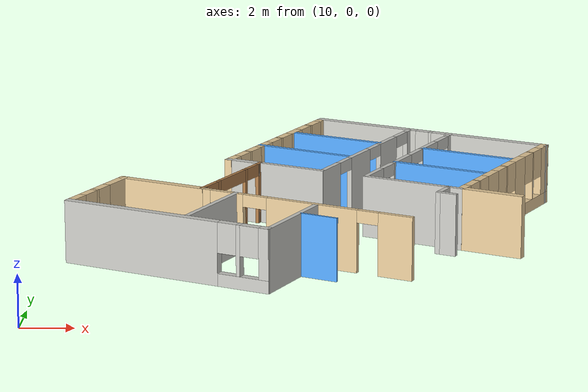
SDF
<sdf version="1.6">
 <model name="floor_with_ground">
  <pose>1.8499 0.23643 0 0 -0 0</pose>
  <link name="Wall_102">
   <pose>9.8976 9.88157 0 0 -0 1.11772</pose>
   <visual name="Wall_102_Visual_0">
    <pose>-1.5828 0 1.25 0 -0 0</pose>
    <geometry><box><size>1.04544 0.32 2.5</size></box></geometry>
    <material>
     <script><uri>file://media/materials/scripts/gazebo.material</uri><name>Gazebo/Grey</name></script>
     <ambient>0.921569 0.807843 0.615686 1</ambient>
    </material>
   </visual>
   <collision name="Wall_102_Collision_0">
    <geometry><box><size>1.04544 0.32 2.5</size></box></geometry>
    <pose>-1.5828 0 1.25 0 -0 0</pose>
   </collision>
   <visual name="Wall_102_Visual_1">
    <pose>0.522722 0 0.25 0 -0 0</pose>
    <geometry><box><size>3.1656 0.32 0.5</size></box></geometry>
    <material>
     <script><uri>file://media/materials/scripts/gazebo.material</uri><name>Gazebo/Grey</name></script>
     <ambient>0.921569 0.807843 0.615686 1</ambient>
    </material>
   </visual>
   <collision name="Wall_102_Collision_1">
    <geometry><box><size>3.1656 0.32 0.5</size></box></geometry>
    <pose>0.522722 0 0.25 0 -0 0</pose>
   </collision>
   <visual name="Wall_102_Visual_2">
    <pose>-0.17882 0 1.5 0 -0 0</pose>
    <geometry><box><size>0.162513 0.32 2</size></box></geometry>
    <material>
     <script><uri>file://media/materials/scripts/gazebo.material</uri><name>Gazebo/Grey</name></script>
     <ambient>0.921569 0.807843 0.615686 1</ambient>
    </material>
   </visual>
   <collision name="Wall_102_Collision_2">
    <geometry><box><size>0.162513 0.32 2</size></box></geometry>
    <pose>-0.17882 0 1.5 0 -0 0</pose>
   </collision>
   <visual name="Wall_102_Visual_3">
    <pose>1.40398 0 1.5 0 -0 0</pose>
    <geometry><box><size>1.40308 0.32 2</size></box></geometry>
    <material>
     <script><uri>file://media/materials/scripts/gazebo.material</uri><name>Gazebo/Grey</name></script>
     <ambient>0.921569 0.807843 0.615686 1</ambient>
    </material>
   </visual>
   <collision name="Wall_102_Collision_3">
    <geometry><box><size>1.40308 0.32 2</size></box></geometry>
    <pose>1.40398 0 1.5 0 -0 0</pose>
   </collision>
   <visual name="Wall_102_Visual_4">
    <pose>-0.660077 0 1.9 0 -0 0</pose>
    <geometry><box><size>0.8 0.32 1.2</size></box></geometry>
    <material>
     <script><uri>file://media/materials/scripts/gazebo.material</uri><name>Gazebo/Grey</name></script>
     <ambient>0.921569 0.807843 0.615686 1</ambient>
    </material>
   </visual>
   <collision name="Wall_102_Collision_4">
    <geometry><box><size>0.8 0.32 1.2</size></box></geometry>
    <pose>-0.660077 0 1.9 0 -0 0</pose>
   </collision>
   <visual name="Wall_102_Visual_5">
    <pose>0.302436 0 1.9 0 -0 0</pose>
    <geometry><box><size>0.8 0.32 1.2</size></box></geometry>
    <material>
     <script><uri>file://media/materials/scripts/gazebo.material</uri><name>Gazebo/Grey</name></script>
     <ambient>0.921569 0.807843 0.615686 1</ambient>
    </material>
   </visual>
   <collision name="Wall_102_Collision_5">
    <geometry><box><size>0.8 0.32 1.2</size></box></geometry>
    <pose>0.302436 0 1.9 0 -0 0</pose>
   </collision>
  </link>
  <link name="Wall_105">
   <pose>15.0533 12.1406 0 0 -0 1.10283</pose>
   <visual name="Wall_105_Visual_0">
    <pose>-2.25013 0 1.25 0 -0 0</pose>
    <geometry><box><size>0.370072 0.15 2.5</size></box></geometry>
    <material>
     <script><uri>file://media/materials/scripts/gazebo.material</uri><name>Gazebo/Wood</name></script>
     <ambient>1 1 1 1</ambient>
    </material>
   </visual>
   <collision name="Wall_105_Collision_0">
    <geometry><box><size>0.370072 0.15 2.5</size></box></geometry>
    <pose>-2.25013 0 1.25 0 -0 0</pose>
   </collision>
   <visual name="Wall_105_Visual_1">
    <pose>-1.06463 0 1.25 0 -0 0</pose>
    <geometry><box><size>0.200912 0.15 2.5</size></box></geometry>
    <material>
     <script><uri>file://media/materials/scripts/gazebo.material</uri><name>Gazebo/Wood</name></script>
     <ambient>1 1 1 1</ambient>
    </material>
   </visual>
   <collision name="Wall_105_Collision_1">
    <geometry><box><size>0.200912 0.15 2.5</size></box></geometry>
    <pose>-1.06463 0 1.25 0 -0 0</pose>
   </collision>
   <visual name="Wall_105_Visual_2">
    <pose>1.08319 0 1.25 0 -0 0</pose>
    <geometry><box><size>0.159861 0.15 2.5</size></box></geometry>
    <material>
     <script><uri>file://media/materials/scripts/gazebo.material</uri><name>Gazebo/Wood</name></script>
     <ambient>1 1 1 1</ambient>
    </material>
   </visual>
   <collision name="Wall_105_Collision_2">
    <geometry><box><size>0.159861 0.15 2.5</size></box></geometry>
    <pose>1.08319 0 1.25 0 -0 0</pose>
   </collision>
   <visual name="Wall_105_Visual_3">
    <pose>2.24914 0 1.25 0 -0 0</pose>
    <geometry><box><size>0.372048 0.15 2.5</size></box></geometry>
    <material>
     <script><uri>file://media/materials/scripts/gazebo.material</uri><name>Gazebo/Wood</name></script>
     <ambient>1 1 1 1</ambient>
    </material>
   </visual>
   <collision name="Wall_105_Collision_3">
    <geometry><box><size>0.372048 0.15 2.5</size></box></geometry>
    <pose>2.24914 0 1.25 0 -0 0</pose>
   </collision>
   <visual name="Wall_105_Visual_4">
    <pose>-1.61509 0 2.25 0 -0 0</pose>
    <geometry><box><size>0.9 0.15 0.5</size></box></geometry>
    <material>
     <script><uri>file://media/materials/scripts/gazebo.material</uri><name>Gazebo/Wood</name></script>
     <ambient>1 1 1 1</ambient>
    </material>
   </visual>
   <collision name="Wall_105_Collision_4">
    <geometry><box><size>0.9 0.15 0.5</size></box></geometry>
    <pose>-1.61509 0 2.25 0 -0 0</pose>
   </collision>
   <visual name="Wall_105_Visual_5">
    <pose>0.019538 0 2.25 0 -0 0</pose>
    <geometry><box><size>1.96743 0.15 0.5</size></box></geometry>
    <material>
     <script><uri>file://media/materials/scripts/gazebo.material</uri><name>Gazebo/Wood</name></script>
     <ambient>1 1 1 1</ambient>
    </material>
   </visual>
   <collision name="Wall_105_Collision_5">
    <geometry><box><size>1.96743 0.15 0.5</size></box></geometry>
    <pose>0.019538 0 2.25 0 -0 0</pose>
   </collision>
   <visual name="Wall_105_Visual_6">
    <pose>1.61312 0 2.25 0 -0 0</pose>
    <geometry><box><size>0.9 0.15 0.5</size></box></geometry>
    <material>
     <script><uri>file://media/materials/scripts/gazebo.material</uri><name>Gazebo/Wood</name></script>
     <ambient>1 1 1 1</ambient>
    </material>
   </visual>
   <collision name="Wall_105_Collision_6">
    <geometry><box><size>0.9 0.15 0.5</size></box></geometry>
    <pose>1.61312 0 2.25 0 -0 0</pose>
   </collision>
  </link>
  <link name="Wall_113">
   <collision name="Wall_113_Collision">
    <geometry><box><size>0.880212 0.2 2.5</size></box></geometry>
    <pose>0 0 1.25 0 -0 0</pose>
   </collision>
   <visual name="Wall_113_Visual">
    <pose>0 0 1.25 0 -0 0</pose>
    <geometry><box><size>0.880212 0.2 2.5</size></box></geometry>
    <material>
     <script><uri>file://media/materials/scripts/gazebo.material</uri><name>Gazebo/CeilingTiled</name></script>
     <ambient>0.921569 0.807843 0.615686 1</ambient>
    </material>
   </visual>
   <pose>23.5971 9.55907 0 0 -0 2.67663</pose>
  </link>
  <link name="Wall_114">
   <collision name="Wall_114_Collision">
    <geometry><box><size>1.09128 0.2 2.5</size></box></geometry>
    <pose>0 0 1.25 0 -0 0</pose>
   </collision>
   <visual name="Wall_114_Visual">
    <pose>0 0 1.25 0 -0 0</pose>
    <geometry><box><size>1.09128 0.2 2.5</size></box></geometry>
    <material>
     <script><uri>file://media/materials/scripts/gazebo.material</uri><name>Gazebo/CeilingTiled</name></script>
     <ambient>0.921569 0.807843 0.615686 1</ambient>
    </material>
   </visual>
   <pose>23.4921 10.1101 0 0 -0 1.10765</pose>
  </link>
  <link name="Wall_118">
   <pose>16.6583 18.4651 0 0 -0 1.11268</pose>
   <visual name="Wall_118_Visual_0">
    <pose>-3.85566 0 1.25 0 -0 0</pose>
    <geometry><box><size>0.842754 0.32 2.5</size></box></geometry>
    <material>
     <script><uri>file://media/materials/scripts/gazebo.material</uri><name>Gazebo/Grey</name></script>
     <ambient>0.921569 0.807843 0.615686 1</ambient>
    </material>
   </visual>
   <collision name="Wall_118_Collision_0">
    <geometry><box><size>0.842754 0.32 2.5</size></box></geometry>
    <pose>-3.85566 0 1.25 0 -0 0</pose>
   </collision>
   <visual name="Wall_118_Visual_1">
    <pose>0.421377 0 0.25 0 -0 0</pose>
    <geometry><box><size>7.71131 0.32 0.5</size></box></geometry>
    <material>
     <script><uri>file://media/materials/scripts/gazebo.material</uri><name>Gazebo/Grey</name></script>
     <ambient>0.921569 0.807843 0.615686 1</ambient>
    </material>
   </visual>
   <collision name="Wall_118_Collision_1">
    <geometry><box><size>7.71131 0.32 0.5</size></box></geometry>
    <pose>0.421377 0 0.25 0 -0 0</pose>
   </collision>
   <visual name="Wall_118_Visual_2">
    <pose>-2.57807 0 1.5 0 -0 0</pose>
    <geometry><box><size>0.112411 0.32 2</size></box></geometry>
    <material>
     <script><uri>file://media/materials/scripts/gazebo.material</uri><name>Gazebo/Grey</name></script>
     <ambient>0.921569 0.807843 0.615686 1</ambient>
    </material>
   </visual>
   <collision name="Wall_118_Collision_2">
    <geometry><box><size>0.112411 0.32 2</size></box></geometry>
    <pose>-2.57807 0 1.5 0 -0 0</pose>
   </collision>
   <visual name="Wall_118_Visual_3">
    <pose>-1.21741 0 1.5 0 -0 0</pose>
    <geometry><box><size>1.00892 0.32 2</size></box></geometry>
    <material>
     <script><uri>file://media/materials/scripts/gazebo.material</uri><name>Gazebo/Grey</name></script>
     <ambient>0.921569 0.807843 0.615686 1</ambient>
    </material>
   </visual>
   <collision name="Wall_118_Collision_3">
    <geometry><box><size>1.00892 0.32 2</size></box></geometry>
    <pose>-1.21741 0 1.5 0 -0 0</pose>
   </collision>
   <visual name="Wall_118_Visual_4">
    <pose>0.148764 0 1.5 0 -0 0</pose>
    <geometry><box><size>0.123417 0.32 2</size></box></geometry>
    <material>
     <script><uri>file://media/materials/scripts/gazebo.material</uri><name>Gazebo/Grey</name></script>
     <ambient>0.921569 0.807843 0.615686 1</ambient>
    </material>
   </visual>
   <collision name="Wall_118_Collision_4">
    <geometry><box><size>0.123417 0.32 2</size></box></geometry>
    <pose>0.148764 0 1.5 0 -0 0</pose>
   </collision>
   <visual name="Wall_118_Visual_5">
    <pose>1.46776 0 1.5 0 -0 0</pose>
    <geometry><box><size>0.914569 0.32 2</size></box></geometry>
    <material>
     <script><uri>file://media/materials/scripts/gazebo.material</uri><name>Gazebo/Grey</name></script>
     <ambient>0.921569 0.807843 0.615686 1</ambient>
    </material>
   </visual>
   <collision name="Wall_118_Collision_5">
    <geometry><box><size>0.914569 0.32 2</size></box></geometry>
    <pose>1.46776 0 1.5 0 -0 0</pose>
   </collision>
   <visual name="Wall_118_Visual_6">
    <pose>2.7876 0 1.5 0 -0 0</pose>
    <geometry><box><size>0.12511 0.32 2</size></box></geometry>
    <material>
     <script><uri>file://media/materials/scripts/gazebo.material</uri><name>Gazebo/Grey</name></script>
     <ambient>0.921569 0.807843 0.615686 1</ambient>
    </material>
   </visual>
   <collision name="Wall_118_Collision_6">
    <geometry><box><size>0.12511 0.32 2</size></box></geometry>
    <pose>2.7876 0 1.5 0 -0 0</pose>
   </collision>
   <visual name="Wall_118_Visual_7">
    <pose>3.96359 0 1.5 0 -0 0</pose>
    <geometry><box><size>0.626882 0.32 2</size></box></geometry>
    <material>
     <script><uri>file://media/materials/scripts/gazebo.material</uri><name>Gazebo/Grey</name></script>
     <ambient>0.921569 0.807843 0.615686 1</ambient>
    </material>
   </visual>
   <collision name="Wall_118_Collision_7">
    <geometry><box><size>0.626882 0.32 2</size></box></geometry>
    <pose>3.96359 0 1.5 0 -0 0</pose>
   </collision>
   <visual name="Wall_118_Visual_8">
    <pose>-3.03428 0 1.9 0 -0 0</pose>
    <geometry><box><size>0.8 0.32 1.2</size></box></geometry>
    <material>
     <script><uri>file://media/materials/scripts/gazebo.material</uri><name>Gazebo/Grey</name></script>
     <ambient>0.921569 0.807843 0.615686 1</ambient>
    </material>
   </visual>
   <collision name="Wall_118_Collision_8">
    <geometry><box><size>0.8 0.32 1.2</size></box></geometry>
    <pose>-3.03428 0 1.9 0 -0 0</pose>
   </collision>
   <visual name="Wall_118_Visual_9">
    <pose>-2.12187 0 1.9 0 -0 0</pose>
    <geometry><box><size>0.8 0.32 1.2</size></box></geometry>
    <material>
     <script><uri>file://media/materials/scripts/gazebo.material</uri><name>Gazebo/Grey</name></script>
     <ambient>0.921569 0.807843 0.615686 1</ambient>
    </material>
   </visual>
   <collision name="Wall_118_Collision_9">
    <geometry><box><size>0.8 0.32 1.2</size></box></geometry>
    <pose>-2.12187 0 1.9 0 -0 0</pose>
   </collision>
   <visual name="Wall_118_Visual_10">
    <pose>-0.312945 0 1.9 0 -0 0</pose>
    <geometry><box><size>0.8 0.32 1.2</size></box></geometry>
    <material>
     <script><uri>file://media/materials/scripts/gazebo.material</uri><name>Gazebo/Grey</name></script>
     <ambient>0.921569 0.807843 0.615686 1</ambient>
    </material>
   </visual>
   <collision name="Wall_118_Collision_10">
    <geometry><box><size>0.8 0.32 1.2</size></box></geometry>
    <pose>-0.312945 0 1.9 0 -0 0</pose>
   </collision>
   <visual name="Wall_118_Visual_11">
    <pose>0.610473 0 1.9 0 -0 0</pose>
    <geometry><box><size>0.8 0.32 1.2</size></box></geometry>
    <material>
     <script><uri>file://media/materials/scripts/gazebo.material</uri><name>Gazebo/Grey</name></script>
     <ambient>0.921569 0.807843 0.615686 1</ambient>
    </material>
   </visual>
   <collision name="Wall_118_Collision_11">
    <geometry><box><size>0.8 0.32 1.2</size></box></geometry>
    <pose>0.610473 0 1.9 0 -0 0</pose>
   </collision>
   <visual name="Wall_118_Visual_12">
    <pose>2.32504 0 1.9 0 -0 0</pose>
    <geometry><box><size>0.8 0.32 1.2</size></box></geometry>
    <material>
     <script><uri>file://media/materials/scripts/gazebo.material</uri><name>Gazebo/Grey</name></script>
     <ambient>0.921569 0.807843 0.615686 1</ambient>
    </material>
   </visual>
   <collision name="Wall_118_Collision_12">
    <geometry><box><size>0.8 0.32 1.2</size></box></geometry>
    <pose>2.32504 0 1.9 0 -0 0</pose>
   </collision>
   <visual name="Wall_118_Visual_13">
    <pose>3.25015 0 1.9 0 -0 0</pose>
    <geometry><box><size>0.8 0.32 1.2</size></box></geometry>
    <material>
     <script><uri>file://media/materials/scripts/gazebo.material</uri><name>Gazebo/Grey</name></script>
     <ambient>0.921569 0.807843 0.615686 1</ambient>
    </material>
   </visual>
   <collision name="Wall_118_Collision_13">
    <geometry><box><size>0.8 0.32 1.2</size></box></geometry>
    <pose>3.25015 0 1.9 0 -0 0</pose>
   </collision>
  </link>
  <link name="Wall_119">
   <pose>23.1751 19.8661 0 0 0 -0.453976</pose>
   <visual name="Wall_119_Visual_0">
    <pose>-3.01092 0 1.25 0 -0 0</pose>
    <geometry><box><size>4.74899 0.32 2.5</size></box></geometry>
    <material>
     <script><uri>file://media/materials/scripts/gazebo.material</uri><name>Gazebo/CeilingTiled</name></script>
     <ambient>0.921569 0.807843 0.615686 1</ambient>
    </material>
   </visual>
   <collision name="Wall_119_Collision_0">
    <geometry><box><size>4.74899 0.32 2.5</size></box></geometry>
    <pose>-3.01092 0 1.25 0 -0 0</pose>
   </collision>
   <visual name="Wall_119_Visual_1">
    <pose>2.3745 0 0.25 0 -0 0</pose>
    <geometry><box><size>6.02183 0.32 0.5</size></box></geometry>
    <material>
     <script><uri>file://media/materials/scripts/gazebo.material</uri><name>Gazebo/CeilingTiled</name></script>
     <ambient>0.921569 0.807843 0.615686 1</ambient>
    </material>
   </visual>
   <collision name="Wall_119_Collision_1">
    <geometry><box><size>6.02183 0.32 0.5</size></box></geometry>
    <pose>2.3745 0 0.25 0 -0 0</pose>
   </collision>
   <visual name="Wall_119_Visual_2">
    <pose>0.029674 0 1.5 0 -0 0</pose>
    <geometry><box><size>0.132185 0.32 2</size></box></geometry>
    <material>
     <script><uri>file://media/materials/scripts/gazebo.material</uri><name>Gazebo/CeilingTiled</name></script>
     <ambient>0.921569 0.807843 0.615686 1</ambient>
    </material>
   </visual>
   <collision name="Wall_119_Collision_2">
    <geometry><box><size>0.132185 0.32 2</size></box></geometry>
    <pose>0.029674 0 1.5 0 -0 0</pose>
   </collision>
   <visual name="Wall_119_Visual_3">
    <pose>3.04059 0 1.5 0 -0 0</pose>
    <geometry><box><size>4.68965 0.32 2</size></box></geometry>
    <material>
     <script><uri>file://media/materials/scripts/gazebo.material</uri><name>Gazebo/CeilingTiled</name></script>
     <ambient>0.921569 0.807843 0.615686 1</ambient>
    </material>
   </visual>
   <collision name="Wall_119_Collision_3">
    <geometry><box><size>4.68965 0.32 2</size></box></geometry>
    <pose>3.04059 0 1.5 0 -0 0</pose>
   </collision>
   <visual name="Wall_119_Visual_4">
    <pose>-0.336419 0 1.9 0 -0 0</pose>
    <geometry><box><size>0.6 0.32 1.2</size></box></geometry>
    <material>
     <script><uri>file://media/materials/scripts/gazebo.material</uri><name>Gazebo/CeilingTiled</name></script>
     <ambient>0.921569 0.807843 0.615686 1</ambient>
    </material>
   </visual>
   <collision name="Wall_119_Collision_4">
    <geometry><box><size>0.6 0.32 1.2</size></box></geometry>
    <pose>-0.336419 0 1.9 0 -0 0</pose>
   </collision>
   <visual name="Wall_119_Visual_5">
    <pose>0.395766 0 1.9 0 -0 0</pose>
    <geometry><box><size>0.6 0.32 1.2</size></box></geometry>
    <material>
     <script><uri>file://media/materials/scripts/gazebo.material</uri><name>Gazebo/CeilingTiled</name></script>
     <ambient>0.921569 0.807843 0.615686 1</ambient>
    </material>
   </visual>
   <collision name="Wall_119_Collision_5">
    <geometry><box><size>0.6 0.32 1.2</size></box></geometry>
    <pose>0.395766 0 1.9 0 -0 0</pose>
   </collision>
  </link>
  <link name="Wall_122">
   <pose>26.0437 13.9556 0 0 -0 1.10317</pose>
   <visual name="Wall_122_Visual_0">
    <pose>-3.86829 0 1.25 0 -0 0</pose>
    <geometry><box><size>0.669026 0.32 2.5</size></box></geometry>
    <material>
     <script><uri>file://media/materials/scripts/gazebo.material</uri><name>Gazebo/Grey</name></script>
     <ambient>0.921569 0.807843 0.615686 1</ambient>
    </material>
   </visual>
   <collision name="Wall_122_Collision_0">
    <geometry><box><size>0.669026 0.32 2.5</size></box></geometry>
    <pose>-3.86829 0 1.25 0 -0 0</pose>
   </collision>
   <visual name="Wall_122_Visual_1">
    <pose>0.334513 0 0.25 0 -0 0</pose>
    <geometry><box><size>7.73658 0.32 0.5</size></box></geometry>
    <material>
     <script><uri>file://media/materials/scripts/gazebo.material</uri><name>Gazebo/Grey</name></script>
     <ambient>0.921569 0.807843 0.615686 1</ambient>
    </material>
   </visual>
   <collision name="Wall_122_Collision_1">
    <geometry><box><size>7.73658 0.32 0.5</size></box></geometry>
    <pose>0.334513 0 0.25 0 -0 0</pose>
   </collision>
   <visual name="Wall_122_Visual_2">
    <pose>-2.69806 0 1.5 0 -0 0</pose>
    <geometry><box><size>0.071431 0.32 2</size></box></geometry>
    <material>
     <script><uri>file://media/materials/scripts/gazebo.material</uri><name>Gazebo/Grey</name></script>
     <ambient>0.921569 0.807843 0.615686 1</ambient>
    </material>
   </visual>
   <collision name="Wall_122_Collision_2">
    <geometry><box><size>0.071431 0.32 2</size></box></geometry>
    <pose>-2.69806 0 1.5 0 -0 0</pose>
   </collision>
   <visual name="Wall_122_Visual_3">
    <pose>-1.37855 0 1.5 0 -0 0</pose>
    <geometry><box><size>0.967581 0.32 2</size></box></geometry>
    <material>
     <script><uri>file://media/materials/scripts/gazebo.material</uri><name>Gazebo/Grey</name></script>
     <ambient>0.921569 0.807843 0.615686 1</ambient>
    </material>
   </visual>
   <collision name="Wall_122_Collision_3">
    <geometry><box><size>0.967581 0.32 2</size></box></geometry>
    <pose>-1.37855 0 1.5 0 -0 0</pose>
   </collision>
   <visual name="Wall_122_Visual_4">
    <pose>-0.045945 0 1.5 0 -0 0</pose>
    <geometry><box><size>0.097636 0.32 2</size></box></geometry>
    <material>
     <script><uri>file://media/materials/scripts/gazebo.material</uri><name>Gazebo/Grey</name></script>
     <ambient>0.921569 0.807843 0.615686 1</ambient>
    </material>
   </visual>
   <collision name="Wall_122_Collision_4">
    <geometry><box><size>0.097636 0.32 2</size></box></geometry>
    <pose>-0.045945 0 1.5 0 -0 0</pose>
   </collision>
   <visual name="Wall_122_Visual_5">
    <pose>1.29056 0 1.5 0 -0 0</pose>
    <geometry><box><size>0.975383 0.32 2</size></box></geometry>
    <material>
     <script><uri>file://media/materials/scripts/gazebo.material</uri><name>Gazebo/Grey</name></script>
     <ambient>0.921569 0.807843 0.615686 1</ambient>
    </material>
   </visual>
   <collision name="Wall_122_Collision_5">
    <geometry><box><size>0.975383 0.32 2</size></box></geometry>
    <pose>1.29056 0 1.5 0 -0 0</pose>
   </collision>
   <visual name="Wall_122_Visual_6">
    <pose>2.62042 0 1.5 0 -0 0</pose>
    <geometry><box><size>0.08433 0.32 2</size></box></geometry>
    <material>
     <script><uri>file://media/materials/scripts/gazebo.material</uri><name>Gazebo/Grey</name></script>
     <ambient>0.921569 0.807843 0.615686 1</ambient>
    </material>
   </visual>
   <collision name="Wall_122_Collision_6">
    <geometry><box><size>0.08433 0.32 2</size></box></geometry>
    <pose>2.62042 0 1.5 0 -0 0</pose>
   </collision>
   <visual name="Wall_122_Visual_7">
    <pose>3.83269 0 1.5 0 -0 0</pose>
    <geometry><box><size>0.740215 0.32 2</size></box></geometry>
    <material>
     <script><uri>file://media/materials/scripts/gazebo.material</uri><name>Gazebo/Grey</name></script>
     <ambient>0.921569 0.807843 0.615686 1</ambient>
    </material>
   </visual>
   <collision name="Wall_122_Collision_7">
    <geometry><box><size>0.740215 0.32 2</size></box></geometry>
    <pose>3.83269 0 1.5 0 -0 0</pose>
   </collision>
   <visual name="Wall_122_Visual_8">
    <pose>-3.13377 0 1.9 0 -0 0</pose>
    <geometry><box><size>0.8 0.32 1.2</size></box></geometry>
    <material>
     <script><uri>file://media/materials/scripts/gazebo.material</uri><name>Gazebo/Grey</name></script>
     <ambient>0.921569 0.807843 0.615686 1</ambient>
    </material>
   </visual>
   <collision name="Wall_122_Collision_8">
    <geometry><box><size>0.8 0.32 1.2</size></box></geometry>
    <pose>-3.13377 0 1.9 0 -0 0</pose>
   </collision>
   <visual name="Wall_122_Visual_9">
    <pose>-2.26234 0 1.9 0 -0 0</pose>
    <geometry><box><size>0.8 0.32 1.2</size></box></geometry>
    <material>
     <script><uri>file://media/materials/scripts/gazebo.material</uri><name>Gazebo/Grey</name></script>
     <ambient>0.921569 0.807843 0.615686 1</ambient>
    </material>
   </visual>
   <collision name="Wall_122_Collision_9">
    <geometry><box><size>0.8 0.32 1.2</size></box></geometry>
    <pose>-2.26234 0 1.9 0 -0 0</pose>
   </collision>
   <visual name="Wall_122_Visual_10">
    <pose>-0.494763 0 1.9 0 -0 0</pose>
    <geometry><box><size>0.8 0.32 1.2</size></box></geometry>
    <material>
     <script><uri>file://media/materials/scripts/gazebo.material</uri><name>Gazebo/Grey</name></script>
     <ambient>0.921569 0.807843 0.615686 1</ambient>
    </material>
   </visual>
   <collision name="Wall_122_Collision_10">
    <geometry><box><size>0.8 0.32 1.2</size></box></geometry>
    <pose>-0.494763 0 1.9 0 -0 0</pose>
   </collision>
   <visual name="Wall_122_Visual_11">
    <pose>0.402873 0 1.9 0 -0 0</pose>
    <geometry><box><size>0.8 0.32 1.2</size></box></geometry>
    <material>
     <script><uri>file://media/materials/scripts/gazebo.material</uri><name>Gazebo/Grey</name></script>
     <ambient>0.921569 0.807843 0.615686 1</ambient>
    </material>
   </visual>
   <collision name="Wall_122_Collision_11">
    <geometry><box><size>0.8 0.32 1.2</size></box></geometry>
    <pose>0.402873 0 1.9 0 -0 0</pose>
   </collision>
   <visual name="Wall_122_Visual_12">
    <pose>2.17826 0 1.9 0 -0 0</pose>
    <geometry><box><size>0.8 0.32 1.2</size></box></geometry>
    <material>
     <script><uri>file://media/materials/scripts/gazebo.material</uri><name>Gazebo/Grey</name></script>
     <ambient>0.921569 0.807843 0.615686 1</ambient>
    </material>
   </visual>
   <collision name="Wall_122_Collision_12">
    <geometry><box><size>0.8 0.32 1.2</size></box></geometry>
    <pose>2.17826 0 1.9 0 -0 0</pose>
   </collision>
   <visual name="Wall_122_Visual_13">
    <pose>3.06259 0 1.9 0 -0 0</pose>
    <geometry><box><size>0.8 0.32 1.2</size></box></geometry>
    <material>
     <script><uri>file://media/materials/scripts/gazebo.material</uri><name>Gazebo/Grey</name></script>
     <ambient>0.921569 0.807843 0.615686 1</ambient>
    </material>
   </visual>
   <collision name="Wall_122_Collision_13">
    <geometry><box><size>0.8 0.32 1.2</size></box></geometry>
    <pose>3.06259 0 1.9 0 -0 0</pose>
   </collision>
  </link>
  <link name="Wall_126">
   <collision name="Wall_126_Collision">
    <geometry><box><size>2.76484 0.32 2.5</size></box></geometry>
    <pose>0 0 1.25 0 -0 0</pose>
   </collision>
   <visual name="Wall_126_Visual">
    <pose>0 0 1.25 0 -0 0</pose>
    <geometry><box><size>2.76484 0.32 2.5</size></box></geometry>
    <material>
     <script><uri>file://media/materials/scripts/gazebo.material</uri><name>Gazebo/Grey</name></script>
     <ambient>0.921569 0.807843 0.615686 1</ambient>
    </material>
   </visual>
   <pose>25.33 9.77476 0 0 0 -0.469549</pose>
  </link>
  <link name="Wall_132">
   <pose>20.4722 16.6376 0 0 -0 1.10974</pose>
   <visual name="Wall_132_Visual_0">
    <pose>-3.39266 0 1.25 0 -0 0</pose>
    <geometry><box><size>1.52449 0.2 2.5</size></box></geometry>
    <material>
     <script><uri>file://media/materials/scripts/gazebo.material</uri><name>Gazebo/CeilingTiled</name></script>
     <ambient>0.921569 0.807843 0.615686 1</ambient>
    </material>
   </visual>
   <collision name="Wall_132_Collision_0">
    <geometry><box><size>1.52449 0.2 2.5</size></box></geometry>
    <pose>-3.39266 0 1.25 0 -0 0</pose>
   </collision>
   <visual name="Wall_132_Visual_1">
    <pose>-0.782298 0 1.25 0 -0 0</pose>
    <geometry><box><size>1.69291 0.2 2.5</size></box></geometry>
    <material>
     <script><uri>file://media/materials/scripts/gazebo.material</uri><name>Gazebo/CeilingTiled</name></script>
     <ambient>0.921569 0.807843 0.615686 1</ambient>
    </material>
   </visual>
   <collision name="Wall_132_Collision_1">
    <geometry><box><size>1.69291 0.2 2.5</size></box></geometry>
    <pose>-0.782298 0 1.25 0 -0 0</pose>
   </collision>
   <visual name="Wall_132_Visual_2">
    <pose>1.8204 0 1.25 0 -0 0</pose>
    <geometry><box><size>1.54069 0.2 2.5</size></box></geometry>
    <material>
     <script><uri>file://media/materials/scripts/gazebo.material</uri><name>Gazebo/CeilingTiled</name></script>
     <ambient>0.921569 0.807843 0.615686 1</ambient>
    </material>
   </visual>
   <collision name="Wall_132_Collision_2">
    <geometry><box><size>1.54069 0.2 2.5</size></box></geometry>
    <pose>1.8204 0 1.25 0 -0 0</pose>
   </collision>
   <visual name="Wall_132_Visual_3">
    <pose>3.89079 0 1.25 0 -0 0</pose>
    <geometry><box><size>0.528217 0.2 2.5</size></box></geometry>
    <material>
     <script><uri>file://media/materials/scripts/gazebo.material</uri><name>Gazebo/CeilingTiled</name></script>
     <ambient>0.921569 0.807843 0.615686 1</ambient>
    </material>
   </visual>
   <collision name="Wall_132_Collision_3">
    <geometry><box><size>0.528217 0.2 2.5</size></box></geometry>
    <pose>3.89079 0 1.25 0 -0 0</pose>
   </collision>
   <visual name="Wall_132_Visual_4">
    <pose>-2.12958 0 2.25 0 -0 0</pose>
    <geometry><box><size>1.00166 0.2 0.5</size></box></geometry>
    <material>
     <script><uri>file://media/materials/scripts/gazebo.material</uri><name>Gazebo/CeilingTiled</name></script>
     <ambient>0.921569 0.807843 0.615686 1</ambient>
    </material>
   </visual>
   <collision name="Wall_132_Collision_4">
    <geometry><box><size>1.00166 0.2 0.5</size></box></geometry>
    <pose>-2.12958 0 2.25 0 -0 0</pose>
   </collision>
   <visual name="Wall_132_Visual_5">
    <pose>0.557103 0 2.25 0 -0 0</pose>
    <geometry><box><size>0.985898 0.2 0.5</size></box></geometry>
    <material>
     <script><uri>file://media/materials/scripts/gazebo.material</uri><name>Gazebo/CeilingTiled</name></script>
     <ambient>0.921569 0.807843 0.615686 1</ambient>
    </material>
   </visual>
   <collision name="Wall_132_Collision_5">
    <geometry><box><size>0.985898 0.2 0.5</size></box></geometry>
    <pose>0.557103 0 2.25 0 -0 0</pose>
   </collision>
   <visual name="Wall_132_Visual_6">
    <pose>3.10871 0 2.25 0 -0 0</pose>
    <geometry><box><size>1.03594 0.2 0.5</size></box></geometry>
    <material>
     <script><uri>file://media/materials/scripts/gazebo.material</uri><name>Gazebo/CeilingTiled</name></script>
     <ambient>0.921569 0.807843 0.615686 1</ambient>
    </material>
   </visual>
   <collision name="Wall_132_Collision_6">
    <geometry><box><size>1.03594 0.2 0.5</size></box></geometry>
    <pose>3.10871 0 2.25 0 -0 0</pose>
   </collision>
  </link>
  <link name="Wall_134">
   <pose>22.224 15.8028 0 0 -0 1.11614</pose>
   <visual name="Wall_134_Visual_0">
    <pose>-3.38319 0 1.25 0 -0 0</pose>
    <geometry><box><size>1.49229 0.2 2.5</size></box></geometry>
    <material>
     <script><uri>file://media/materials/scripts/gazebo.material</uri><name>Gazebo/CeilingTiled</name></script>
     <ambient>0.921569 0.807843 0.615686 1</ambient>
    </material>
   </visual>
   <collision name="Wall_134_Collision_0">
    <geometry><box><size>1.49229 0.2 2.5</size></box></geometry>
    <pose>-3.38319 0 1.25 0 -0 0</pose>
   </collision>
   <visual name="Wall_134_Visual_1">
    <pose>-0.835285 0 1.25 0 -0 0</pose>
    <geometry><box><size>1.62619 0.2 2.5</size></box></geometry>
    <material>
     <script><uri>file://media/materials/scripts/gazebo.material</uri><name>Gazebo/CeilingTiled</name></script>
     <ambient>0.921569 0.807843 0.615686 1</ambient>
    </material>
   </visual>
   <collision name="Wall_134_Collision_1">
    <geometry><box><size>1.62619 0.2 2.5</size></box></geometry>
    <pose>-0.835285 0 1.25 0 -0 0</pose>
   </collision>
   <visual name="Wall_134_Visual_2">
    <pose>1.81493 0 1.25 0 -0 0</pose>
    <geometry><box><size>1.46679 0.2 2.5</size></box></geometry>
    <material>
     <script><uri>file://media/materials/scripts/gazebo.material</uri><name>Gazebo/CeilingTiled</name></script>
     <ambient>0.921569 0.807843 0.615686 1</ambient>
    </material>
   </visual>
   <collision name="Wall_134_Collision_2">
    <geometry><box><size>1.46679 0.2 2.5</size></box></geometry>
    <pose>1.81493 0 1.25 0 -0 0</pose>
   </collision>
   <visual name="Wall_134_Visual_3">
    <pose>3.87749 0 1.25 0 -0 0</pose>
    <geometry><box><size>0.503684 0.2 2.5</size></box></geometry>
    <material>
     <script><uri>file://media/materials/scripts/gazebo.material</uri><name>Gazebo/CeilingTiled</name></script>
     <ambient>0.921569 0.807843 0.615686 1</ambient>
    </material>
   </visual>
   <collision name="Wall_134_Collision_3">
    <geometry><box><size>0.503684 0.2 2.5</size></box></geometry>
    <pose>3.87749 0 1.25 0 -0 0</pose>
   </collision>
   <visual name="Wall_134_Visual_4">
    <pose>-2.14271 0 2.25 0 -0 0</pose>
    <geometry><box><size>0.988661 0.2 0.5</size></box></geometry>
    <material>
     <script><uri>file://media/materials/scripts/gazebo.material</uri><name>Gazebo/CeilingTiled</name></script>
     <ambient>0.921569 0.807843 0.615686 1</ambient>
    </material>
   </visual>
   <collision name="Wall_134_Collision_4">
    <geometry><box><size>0.988661 0.2 0.5</size></box></geometry>
    <pose>-2.14271 0 2.25 0 -0 0</pose>
   </collision>
   <visual name="Wall_134_Visual_5">
    <pose>0.529675 0 2.25 0 -0 0</pose>
    <geometry><box><size>1.10373 0.2 0.5</size></box></geometry>
    <material>
     <script><uri>file://media/materials/scripts/gazebo.material</uri><name>Gazebo/CeilingTiled</name></script>
     <ambient>0.921569 0.807843 0.615686 1</ambient>
    </material>
   </visual>
   <collision name="Wall_134_Collision_5">
    <geometry><box><size>1.10373 0.2 0.5</size></box></geometry>
    <pose>0.529675 0 2.25 0 -0 0</pose>
   </collision>
   <visual name="Wall_134_Visual_6">
    <pose>3.08699 0 2.25 0 -0 0</pose>
    <geometry><box><size>1.07732 0.2 0.5</size></box></geometry>
    <material>
     <script><uri>file://media/materials/scripts/gazebo.material</uri><name>Gazebo/CeilingTiled</name></script>
     <ambient>0.921569 0.807843 0.615686 1</ambient>
    </material>
   </visual>
   <collision name="Wall_134_Collision_6">
    <geometry><box><size>1.07732 0.2 0.5</size></box></geometry>
    <pose>3.08699 0 2.25 0 -0 0</pose>
   </collision>
  </link>
  <link name="Wall_136">
   <collision name="Wall_136_Collision">
    <geometry><box><size>4.36894 0.2 2.5</size></box></geometry>
    <pose>0 0 1.25 0 -0 0</pose>
   </collision>
   <visual name="Wall_136_Visual">
    <pose>0 0 1.25 0 -0 0</pose>
    <geometry><box><size>4.36894 0.2 2.5</size></box></geometry>
    <material>
     <script><uri>file://media/materials/scripts/gazebo.material</uri><name>Gazebo/Grey</name></script>
     <ambient>0.333333 0.666667 1 1</ambient>
    </material>
   </visual>
   <pose>17.8681 16.3504 0 0 -0 2.67537</pose>
  </link>
  <link name="Wall_139">
   <collision name="Wall_139_Collision">
    <geometry><box><size>4.35343 0.2 2.5</size></box></geometry>
    <pose>0 0 1.25 0 -0 0</pose>
   </collision>
   <visual name="Wall_139_Visual">
    <pose>0 0 1.25 0 -0 0</pose>
    <geometry><box><size>4.35343 0.2 2.5</size></box></geometry>
    <material>
     <script><uri>file://media/materials/scripts/gazebo.material</uri><name>Gazebo/Grey</name></script>
     <ambient>0.333333 0.666667 1 1</ambient>
    </material>
   </visual>
   <pose>19.0877 18.7303 0 0 0 -0.456822</pose>
  </link>
  <link name="Wall_141">
   <collision name="Wall_141_Collision">
    <geometry><box><size>4.33544 0.2 2.5</size></box></geometry>
    <pose>0 0 1.25 0 -0 0</pose>
   </collision>
   <visual name="Wall_141_Visual">
    <pose>0 0 1.25 0 -0 0</pose>
    <geometry><box><size>4.33544 0.2 2.5</size></box></geometry>
    <material>
     <script><uri>file://media/materials/scripts/gazebo.material</uri><name>Gazebo/Grey</name></script>
     <ambient>0.333333 0.666667 1 1</ambient>
    </material>
   </visual>
   <pose>23.5065 13.6015 0 0 -0 2.68452</pose>
  </link>
  <link name="Wall_143">
   <collision name="Wall_143_Collision">
    <geometry><box><size>4.40079 0.2 2.5</size></box></geometry>
    <pose>0 0 1.25 0 -0 0</pose>
   </collision>
   <visual name="Wall_143_Visual">
    <pose>0 0 1.25 0 -0 0</pose>
    <geometry><box><size>4.40079 0.2 2.5</size></box></geometry>
    <material>
     <script><uri>file://media/materials/scripts/gazebo.material</uri><name>Gazebo/Grey</name></script>
     <ambient>0.333333 0.666667 1 1</ambient>
    </material>
   </visual>
   <pose>24.7064 15.9689 0 0 -0 2.68529</pose>
  </link>
  <link name="Wall_146">
   <collision name="Wall_146_Collision">
    <geometry><box><size>4.09724 0.2 2.5</size></box></geometry>
    <pose>0 0 1.25 0 -0 0</pose>
   </collision>
   <visual name="Wall_146_Visual">
    <pose>0 0 1.25 0 -0 0</pose>
    <geometry><box><size>4.09724 0.2 2.5</size></box></geometry>
    <material>
     <script><uri>file://media/materials/scripts/gazebo.material</uri><name>Gazebo/CeilingTiled</name></script>
     <ambient>0.333333 0.666667 1 1</ambient>
    </material>
   </visual>
   <pose>14.5106 7.59157 0 0 -0 1.11403</pose>
  </link>
  <link name="Wall_148">
   <collision name="Wall_148_Collision">
    <geometry><box><size>4.10414 0.2 2.5</size></box></geometry>
    <pose>0 0 1.25 0 -0 0</pose>
   </collision>
   <visual name="Wall_148_Visual">
    <pose>0 0 1.25 0 -0 0</pose>
    <geometry><box><size>4.10414 0.2 2.5</size></box></geometry>
    <material>
     <script><uri>file://media/materials/scripts/gazebo.material</uri><name>Gazebo/CeilingTiled</name></script>
     <ambient>0.333333 0.666667 1 1</ambient>
    </material>
   </visual>
   <pose>17.7121 5.98707 0 0 -0 1.11918</pose>
  </link>
  <link name="Wall_152">
   <collision name="Wall_152_Collision">
    <geometry><box><size>1.58261 0.1 2.5</size></box></geometry>
    <pose>0 0 1.25 0 -0 0</pose>
   </collision>
   <visual name="Wall_152_Visual">
    <pose>0 0 1.25 0 -0 0</pose>
    <geometry><box><size>1.58261 0.1 2.5</size></box></geometry>
    <material>
     <script><uri>file://media/materials/scripts/gazebo.material</uri><name>Gazebo/Grey</name></script>
     <ambient>0.333333 0.666667 1 1</ambient>
    </material>
   </visual>
   <pose>18.6776 6.08557 0 0 -0 2.67282</pose>
  </link>
  <link name="Wall_339">
   <pose>12.9172 6.18645 0 0 0 -0.459674</pose>
   <visual name="Wall_339_Visual_0">
    <pose>-1.0925 0 1.25 0 -0 0</pose>
    <geometry><box><size>6.77294 0.32 2.5</size></box></geometry>
    <material>
     <script><uri>file://media/materials/scripts/gazebo.material</uri><name>Gazebo/CeilingTiled</name></script>
     <ambient>0.921569 0.807843 0.615686 1</ambient>
    </material>
   </visual>
   <collision name="Wall_339_Collision_0">
    <geometry><box><size>6.77294 0.32 2.5</size></box></geometry>
    <pose>-1.0925 0 1.25 0 -0 0</pose>
   </collision>
   <visual name="Wall_339_Visual_1">
    <pose>3.38647 0 0.25 0 -0 0</pose>
    <geometry><box><size>2.185 0.32 0.5</size></box></geometry>
    <material>
     <script><uri>file://media/materials/scripts/gazebo.material</uri><name>Gazebo/CeilingTiled</name></script>
     <ambient>0.921569 0.807843 0.615686 1</ambient>
    </material>
   </visual>
   <collision name="Wall_339_Collision_1">
    <geometry><box><size>2.185 0.32 0.5</size></box></geometry>
    <pose>3.38647 0 0.25 0 -0 0</pose>
   </collision>
   <visual name="Wall_339_Visual_2">
    <pose>3.17495 0 1.5 0 -0 0</pose>
    <geometry><box><size>0.161963 0.32 2</size></box></geometry>
    <material>
     <script><uri>file://media/materials/scripts/gazebo.material</uri><name>Gazebo/CeilingTiled</name></script>
     <ambient>0.921569 0.807843 0.615686 1</ambient>
    </material>
   </visual>
   <collision name="Wall_339_Collision_2">
    <geometry><box><size>0.161963 0.32 2</size></box></geometry>
    <pose>3.17495 0 1.5 0 -0 0</pose>
   </collision>
   <visual name="Wall_339_Visual_3">
    <pose>4.26745 0 1.5 0 -0 0</pose>
    <geometry><box><size>0.423035 0.32 2</size></box></geometry>
    <material>
     <script><uri>file://media/materials/scripts/gazebo.material</uri><name>Gazebo/CeilingTiled</name></script>
     <ambient>0.921569 0.807843 0.615686 1</ambient>
    </material>
   </visual>
   <collision name="Wall_339_Collision_3">
    <geometry><box><size>0.423035 0.32 2</size></box></geometry>
    <pose>4.26745 0 1.5 0 -0 0</pose>
   </collision>
   <visual name="Wall_339_Visual_4">
    <pose>2.69397 0 1.9 0 -0 0</pose>
    <geometry><box><size>0.8 0.32 1.2</size></box></geometry>
    <material>
     <script><uri>file://media/materials/scripts/gazebo.material</uri><name>Gazebo/CeilingTiled</name></script>
     <ambient>0.921569 0.807843 0.615686 1</ambient>
    </material>
   </visual>
   <collision name="Wall_339_Collision_4">
    <geometry><box><size>0.8 0.32 1.2</size></box></geometry>
    <pose>2.69397 0 1.9 0 -0 0</pose>
   </collision>
   <visual name="Wall_339_Visual_5">
    <pose>3.65593 0 1.9 0 -0 0</pose>
    <geometry><box><size>0.8 0.32 1.2</size></box></geometry>
    <material>
     <script><uri>file://media/materials/scripts/gazebo.material</uri><name>Gazebo/CeilingTiled</name></script>
     <ambient>0.921569 0.807843 0.615686 1</ambient>
    </material>
   </visual>
   <collision name="Wall_339_Collision_5">
    <geometry><box><size>0.8 0.32 1.2</size></box></geometry>
    <pose>3.65593 0 1.9 0 -0 0</pose>
   </collision>
  </link>
  <link name="Wall_344">
   <collision name="Wall_344_Collision">
    <geometry><box><size>3.87788 0.32 2.5</size></box></geometry>
    <pose>0 0 1.25 0 -0 0</pose>
   </collision>
   <visual name="Wall_344_Visual">
    <pose>0 0 1.25 0 -0 0</pose>
    <geometry><box><size>3.87788 0.32 2.5</size></box></geometry>
    <material>
     <script><uri>file://media/materials/scripts/gazebo.material</uri><name>Gazebo/Grey</name></script>
     <ambient>0.921569 0.807843 0.615686 1</ambient>
    </material>
   </visual>
   <pose>12.3612 10.8851 0 0 0 -0.45454</pose>
  </link>
  <link name="Wall_346">
   <pose>18.0716 8.00757 0 0 0 -0.46105</pose>
   <visual name="Wall_346_Visual_0">
    <pose>-4.38703 0 1.25 0 -0 0</pose>
    <geometry><box><size>0.552115 0.2 2.5</size></box></geometry>
    <material>
     <script><uri>file://media/materials/scripts/gazebo.material</uri><name>Gazebo/Grey</name></script>
     <ambient>0.921569 0.807843 0.615686 1</ambient>
    </material>
   </visual>
   <collision name="Wall_346_Collision_0">
    <geometry><box><size>0.552115 0.2 2.5</size></box></geometry>
    <pose>-4.38703 0 1.25 0 -0 0</pose>
   </collision>
   <visual name="Wall_346_Visual_1">
    <pose>-2.88806 0 1.25 0 -0 0</pose>
    <geometry><box><size>0.489176 0.2 2.5</size></box></geometry>
    <material>
     <script><uri>file://media/materials/scripts/gazebo.material</uri><name>Gazebo/Grey</name></script>
     <ambient>0.921569 0.807843 0.615686 1</ambient>
    </material>
   </visual>
   <collision name="Wall_346_Collision_1">
    <geometry><box><size>0.489176 0.2 2.5</size></box></geometry>
    <pose>-2.88806 0 1.25 0 -0 0</pose>
   </collision>
   <visual name="Wall_346_Visual_2">
    <pose>0.358304 0 1.25 0 -0 0</pose>
    <geometry><box><size>3.92201 0.2 2.5</size></box></geometry>
    <material>
     <script><uri>file://media/materials/scripts/gazebo.material</uri><name>Gazebo/Grey</name></script>
     <ambient>0.921569 0.807843 0.615686 1</ambient>
    </material>
   </visual>
   <collision name="Wall_346_Collision_2">
    <geometry><box><size>3.92201 0.2 2.5</size></box></geometry>
    <pose>0.358304 0 1.25 0 -0 0</pose>
   </collision>
   <visual name="Wall_346_Visual_3">
    <pose>3.9412 0 1.25 0 -0 0</pose>
    <geometry><box><size>1.44378 0.2 2.5</size></box></geometry>
    <material>
     <script><uri>file://media/materials/scripts/gazebo.material</uri><name>Gazebo/Grey</name></script>
     <ambient>0.921569 0.807843 0.615686 1</ambient>
    </material>
   </visual>
   <collision name="Wall_346_Collision_3">
    <geometry><box><size>1.44378 0.2 2.5</size></box></geometry>
    <pose>3.9412 0 1.25 0 -0 0</pose>
   </collision>
   <visual name="Wall_346_Visual_4">
    <pose>-3.62181 0 2.25 0 -0 0</pose>
    <geometry><box><size>0.978319 0.2 0.5</size></box></geometry>
    <material>
     <script><uri>file://media/materials/scripts/gazebo.material</uri><name>Gazebo/Grey</name></script>
     <ambient>0.921569 0.807843 0.615686 1</ambient>
    </material>
   </visual>
   <collision name="Wall_346_Collision_4">
    <geometry><box><size>0.978319 0.2 0.5</size></box></geometry>
    <pose>-3.62181 0 2.25 0 -0 0</pose>
   </collision>
   <visual name="Wall_346_Visual_5">
    <pose>-2.12309 0 2.25 0 -0 0</pose>
    <geometry><box><size>1.04077 0.2 0.5</size></box></geometry>
    <material>
     <script><uri>file://media/materials/scripts/gazebo.material</uri><name>Gazebo/Grey</name></script>
     <ambient>0.921569 0.807843 0.615686 1</ambient>
    </material>
   </visual>
   <collision name="Wall_346_Collision_5">
    <geometry><box><size>1.04077 0.2 0.5</size></box></geometry>
    <pose>-2.12309 0 2.25 0 -0 0</pose>
   </collision>
   <visual name="Wall_346_Visual_6">
    <pose>2.76931 0 2.25 0 -0 0</pose>
    <geometry><box><size>0.9 0.2 0.5</size></box></geometry>
    <material>
     <script><uri>file://media/materials/scripts/gazebo.material</uri><name>Gazebo/Grey</name></script>
     <ambient>0.921569 0.807843 0.615686 1</ambient>
    </material>
   </visual>
   <collision name="Wall_346_Collision_6">
    <geometry><box><size>0.9 0.2 0.5</size></box></geometry>
    <pose>2.76931 0 2.25 0 -0 0</pose>
   </collision>
  </link>
  <link name="Wall_348">
   <collision name="Wall_348_Collision">
    <geometry><box><size>1.58511 0.32 2.5</size></box></geometry>
    <pose>0 0 1.25 0 -0 0</pose>
   </collision>
   <visual name="Wall_348_Visual">
    <pose>0 0 1.25 0 -0 0</pose>
    <geometry><box><size>1.58511 0.32 2.5</size></box></geometry>
    <material>
     <script><uri>file://media/materials/scripts/gazebo.material</uri><name>Gazebo/CeilingTiled</name></script>
     <ambient>0.921569 0.807843 0.615686 1</ambient>
    </material>
   </visual>
   <pose>15.4383 14.4988 0 0 0 -0.447601</pose>
  </link>
  <link name="Wall_389">
   <collision name="Wall_389_Collision">
    <geometry><box><size>3.00825 0.2 2.5</size></box></geometry>
    <pose>0 0 1.25 0 -0 0</pose>
   </collision>
   <visual name="Wall_389_Visual">
    <pose>0 0 1.25 0 -0 0</pose>
    <geometry><box><size>3.00825 0.2 2.5</size></box></geometry>
    <material>
     <script><uri>file://media/materials/scripts/gazebo.material</uri><name>Gazebo/CeilingTiled</name></script>
     <ambient>0.921569 0.807843 0.615686 1</ambient>
    </material>
   </visual>
   <pose>17.3856 13.6221 0 0 0 -0.457755</pose>
  </link>
  <link name="Wall_391">
   <collision name="Wall_391_Collision">
    <geometry><box><size>4.35379 0.2 2.5</size></box></geometry>
    <pose>0 0 1.25 0 -0 0</pose>
   </collision>
   <visual name="Wall_391_Visual">
    <pose>0 0 1.25 0 -0 0</pose>
    <geometry><box><size>4.35379 0.2 2.5</size></box></geometry>
    <material>
     <script><uri>file://media/materials/scripts/gazebo.material</uri><name>Gazebo/CeilingTiled</name></script>
     <ambient>0.921569 0.807843 0.615686 1</ambient>
    </material>
   </visual>
   <pose>22.3091 11.2086 0 0 0 -0.457834</pose>
  </link>
  <static>1</static>
 </model>
</sdf>
